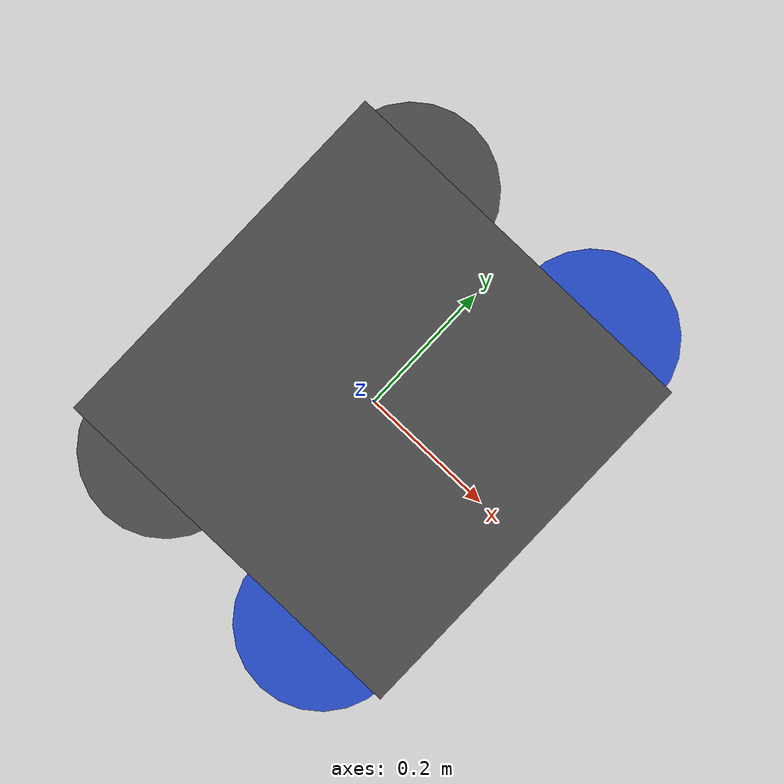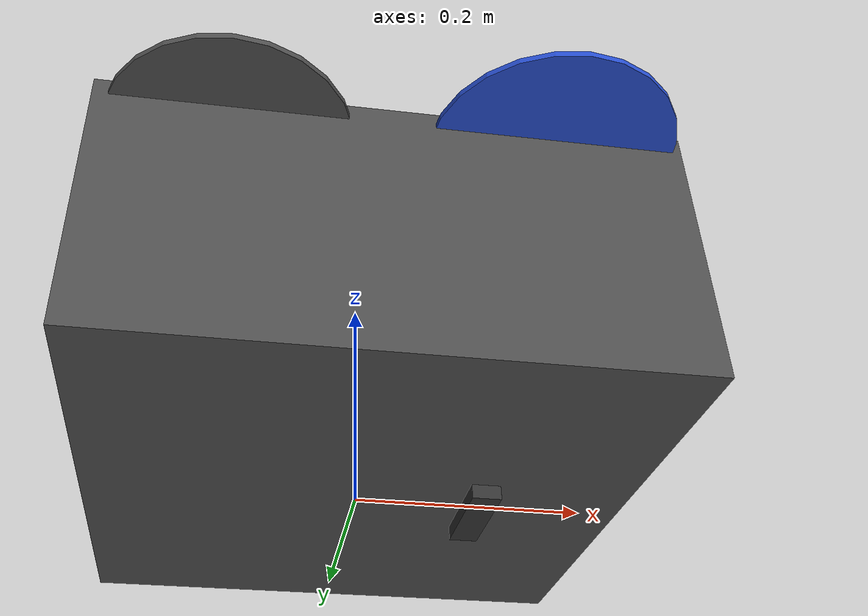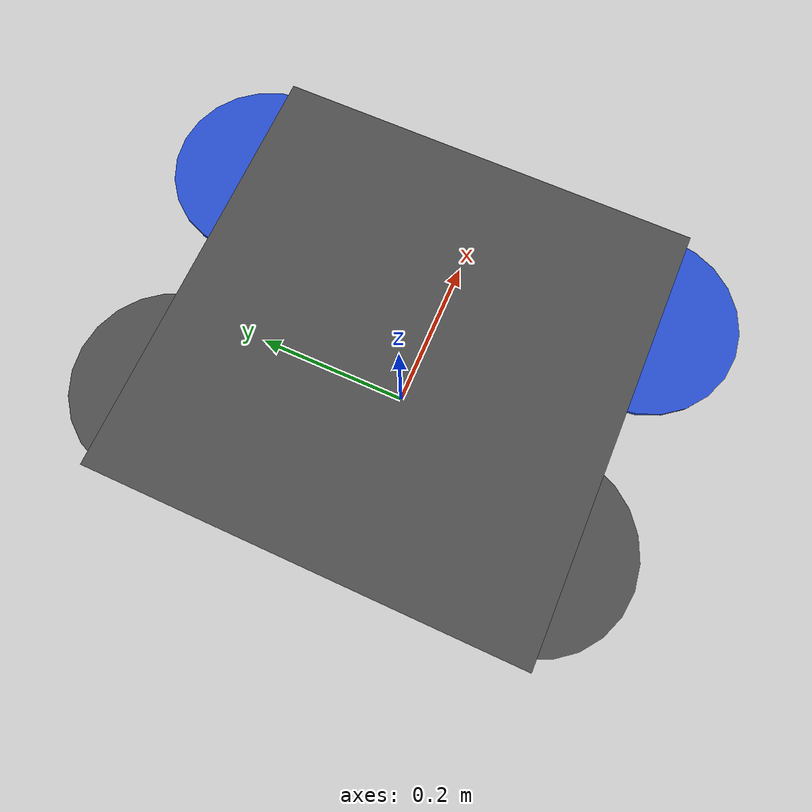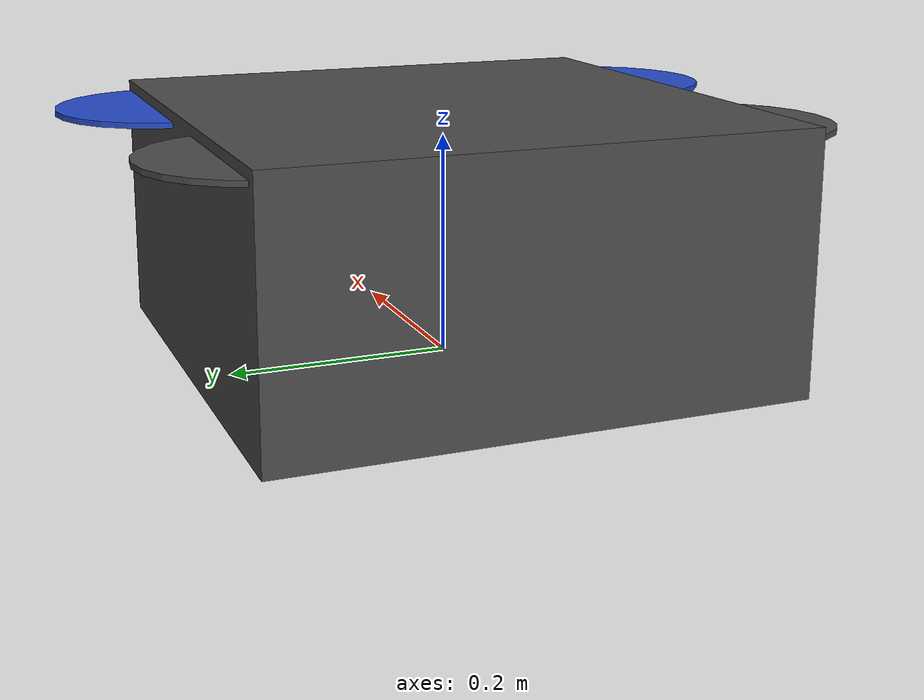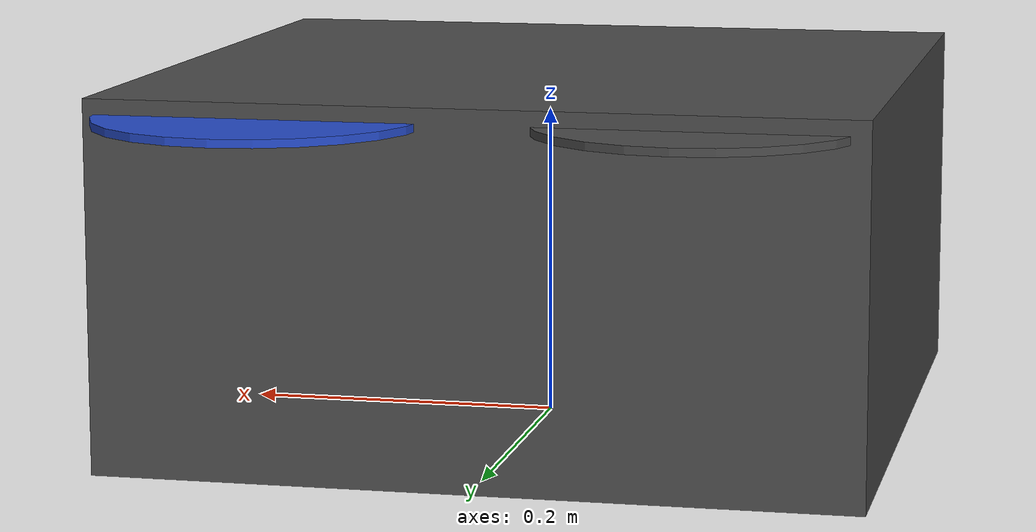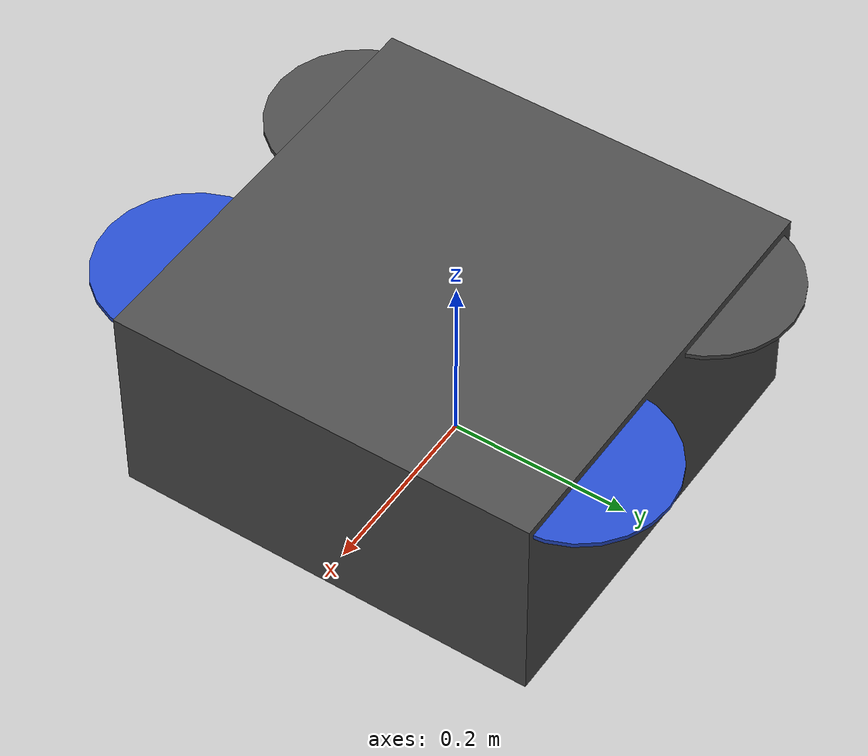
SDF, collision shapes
<?xml version='1.0'?>
<sdf version="1.9">
  <model name="iris_with_d435i">
    <include>
      <uri>model://iris_with_standoffs</uri>
    </include>

    <include>
      <uri>model://realsense_d435i</uri>
      <name>d435i</name>
      <pose>0.116 0.0175 0 0 0 0</pose>
    </include>

    <joint name="camera_joint" type="fixed">
      <parent>iris_with_standoffs::base_link</parent>
      <child>d435i::camera_link</child>
    </joint>

    <!-- plugins -->
    <plugin filename="gz-sim-joint-state-publisher-system"
      name="gz::sim::systems::JointStatePublisher">
    </plugin>
    <plugin filename="gz-sim-lift-drag-system"
        name="gz::sim::systems::LiftDrag">
      <a0>0.3</a0>
      <alpha_stall>1.4</alpha_stall>
      <cla>4.2500</cla>
      <cda>0.10</cda>
      <cma>0.0</cma>
      <cla_stall>-0.025</cla_stall>
      <cda_stall>0.0</cda_stall>
      <cma_stall>0.0</cma_stall>
      <area>0.002</area>
      <air_density>1.2041</air_density>
      <cp>0.084 0 0</cp>
      <forward>0 1 0</forward>
      <upward>0 0 1</upward>
      <link_name>iris_with_standoffs::rotor_0</link_name>
    </plugin>
    <plugin filename="gz-sim-lift-drag-system"
        name="gz::sim::systems::LiftDrag">
      <a0>0.3</a0>
      <alpha_stall>1.4</alpha_stall>
      <cla>4.2500</cla>
      <cda>0.10</cda>
      <cma>0.0</cma>
      <cla_stall>-0.025</cla_stall>
      <cda_stall>0.0</cda_stall>
      <cma_stall>0.0</cma_stall>
      <area>0.002</area>
      <air_density>1.2041</air_density>
      <cp>-0.084 0 0</cp>
      <forward>0 -1 0</forward>
      <upward>0 0 1</upward>
      <link_name>iris_with_standoffs::rotor_0</link_name>
    </plugin>

    <plugin filename="gz-sim-lift-drag-system"
        name="gz::sim::systems::LiftDrag">
      <a0>0.3</a0>
      <alpha_stall>1.4</alpha_stall>
      <cla>4.2500</cla>
      <cda>0.10</cda>
      <cma>0.0</cma>
      <cla_stall>-0.025</cla_stall>
      <cda_stall>0.0</cda_stall>
      <cma_stall>0.0</cma_stall>
      <area>0.002</area>
      <air_density>1.2041</air_density>
      <cp>0.084 0 0</cp>
      <forward>0 1 0</forward>
      <upward>0 0 1</upward>
      <link_name>iris_with_standoffs::rotor_1</link_name>
    </plugin>
    <plugin filename="gz-sim-lift-drag-system"
        name="gz::sim::systems::LiftDrag">
      <a0>0.3</a0>
      <alpha_stall>1.4</alpha_stall>
      <cla>4.2500</cla>
      <cda>0.10</cda>
      <cma>0.0</cma>
      <cla_stall>-0.025</cla_stall>
      <cda_stall>0.0</cda_stall>
      <cma_stall>0.0</cma_stall>
      <area>0.002</area>
      <air_density>1.2041</air_density>
      <cp>-0.084 0 0</cp>
      <forward>0 -1 0</forward>
      <upward>0 0 1</upward>
      <link_name>iris_with_standoffs::rotor_1</link_name>
    </plugin>

    <plugin filename="gz-sim-lift-drag-system"
        name="gz::sim::systems::LiftDrag">
      <a0>0.3</a0>
      <alpha_stall>1.4</alpha_stall>
      <cla>4.2500</cla>
      <cda>0.10</cda>
      <cma>0.0</cma>
      <cla_stall>-0.025</cla_stall>
      <cda_stall>0.0</cda_stall>
      <cma_stall>0.0</cma_stall>
      <area>0.002</area>
      <air_density>1.2041</air_density>
      <cp>0.084 0 0</cp>
      <forward>0 -1 0</forward>
      <upward>0 0 1</upward>
      <link_name>iris_with_standoffs::rotor_2</link_name>
    </plugin>
    <plugin filename="gz-sim-lift-drag-system"
        name="gz::sim::systems::LiftDrag">
      <a0>0.3</a0>
      <alpha_stall>1.4</alpha_stall>
      <cla>4.2500</cla>
      <cda>0.10</cda>
      <cma>0.0</cma>
      <cla_stall>-0.025</cla_stall>
      <cda_stall>0.0</cda_stall>
      <cma_stall>0.0</cma_stall>
      <area>0.002</area>
      <air_density>1.2041</air_density>
      <cp>-0.084 0 0</cp>
      <forward>0 1 0</forward>
      <upward>0 0 1</upward>
      <link_name>iris_with_standoffs::rotor_2</link_name>
    </plugin>

    <plugin filename="gz-sim-lift-drag-system"
        name="gz::sim::systems::LiftDrag">
      <a0>0.3</a0>
      <alpha_stall>1.4</alpha_stall>
      <cla>4.2500</cla>
      <cda>0.10</cda>
      <cma>0.0</cma>
      <cla_stall>-0.025</cla_stall>
      <cda_stall>0.0</cda_stall>
      <cma_stall>0.0</cma_stall>
      <area>0.002</area>
      <air_density>1.2041</air_density>
      <cp>0.084 0 0</cp>
      <forward>0 -1 0</forward>
      <upward>0 0 1</upward>
      <link_name>iris_with_standoffs::rotor_3</link_name>
    </plugin>
    <plugin filename="gz-sim-lift-drag-system"
        name="gz::sim::systems::LiftDrag">
      <a0>0.3</a0>
      <alpha_stall>1.4</alpha_stall>
      <cla>4.2500</cla>
      <cda>0.10</cda>
      <cma>0.0</cma>
      <cla_stall>-0.025</cla_stall>
      <cda_stall>0.0</cda_stall>
      <cma_stall>0.0</cma_stall>
      <area>0.002</area>
      <air_density>1.2041</air_density>
      <cp>-0.084 0 0</cp>
      <forward>0 1 0</forward>
      <upward>0 0 1</upward>
      <link_name>iris_with_standoffs::rotor_3</link_name>
    </plugin>

    <plugin filename="gz-sim-apply-joint-force-system"
      name="gz::sim::systems::ApplyJointForce">
      <joint_name>iris_with_standoffs::rotor_0_joint</joint_name>
    </plugin>
    <plugin filename="gz-sim-apply-joint-force-system"
      name="gz::sim::systems::ApplyJointForce">
      <joint_name>iris_with_standoffs::rotor_1_joint</joint_name>
    </plugin>
    <plugin filename="gz-sim-apply-joint-force-system"
      name="gz::sim::systems::ApplyJointForce">
      <joint_name>iris_with_standoffs::rotor_2_joint</joint_name>
    </plugin>
    <plugin filename="gz-sim-apply-joint-force-system"
      name="gz::sim::systems::ApplyJointForce">
      <joint_name>iris_with_standoffs::rotor_3_joint</joint_name>
    </plugin>

    <plugin name="ArduPilotPlugin"
      filename="ArduPilotPlugin">
      <!-- Port settings -->
      <fdm_addr>127.0.0.1</fdm_addr>
      <fdm_port_in>9002</fdm_port_in>
      <connectionTimeoutMaxCount>5</connectionTimeoutMaxCount>
      <lock_step>1</lock_step>
      <no_time_sync>1</no_time_sync>

      <!-- Frame conventions
        Require by ArduPilot: change model and gazebo from XYZ to XY-Z coordinates
      -->
      <modelXYZToAirplaneXForwardZDown degrees="true">0 0 0 180 0 0</modelXYZToAirplaneXForwardZDown>
      <gazeboXYZToNED degrees="true">0 0 0 180 0 90</gazeboXYZToNED>

      <!-- Sensors -->
      <imuName>iris_with_standoffs::imu_link::imu_sensor</imuName>

      <!--
          incoming control command [0, 1]
          so offset it by 0 to get [0, 1]
          and divide max target by 1.
          offset = 0
          multiplier = 838 max rpm / 1 = 838
        -->
      <control channel="0">
        <jointName>iris_with_standoffs::rotor_0_joint</jointName>
        <useForce>1</useForce>
        <multiplier>838</multiplier>
        <offset>0</offset>
        <servo_min>1100</servo_min>
        <servo_max>1900</servo_max>
        <type>VELOCITY</type>
        <p_gain>0.20</p_gain>
        <i_gain>0</i_gain>
        <d_gain>0</d_gain>
        <i_max>0</i_max>
        <i_min>0</i_min>
        <cmd_max>2.5</cmd_max>
        <cmd_min>-2.5</cmd_min>
        <controlVelocitySlowdownSim>1</controlVelocitySlowdownSim>
      </control>

      <control channel="1">
        <jointName>iris_with_standoffs::rotor_1_joint</jointName>
        <useForce>1</useForce>
        <multiplier>838</multiplier>
        <offset>0</offset>
        <servo_min>1100</servo_min>
        <servo_max>1900</servo_max>
        <type>VELOCITY</type>
        <p_gain>0.20</p_gain>
        <i_gain>0</i_gain>
        <d_gain>0</d_gain>
        <i_max>0</i_max>
        <i_min>0</i_min>
        <cmd_max>2.5</cmd_max>
        <cmd_min>-2.5</cmd_min>
        <controlVelocitySlowdownSim>1</controlVelocitySlowdownSim>
      </control>

      <control channel="2">
        <jointName>iris_with_standoffs::rotor_2_joint</jointName>
        <useForce>1</useForce>
        <multiplier>-838</multiplier>
        <offset>0</offset>
        <servo_min>1100</servo_min>
        <servo_max>1900</servo_max>
        <type>VELOCITY</type>
        <p_gain>0.20</p_gain>
        <i_gain>0</i_gain>
        <d_gain>0</d_gain>
        <i_max>0</i_max>
        <i_min>0</i_min>
        <cmd_max>2.5</cmd_max>
        <cmd_min>-2.5</cmd_min>
        <controlVelocitySlowdownSim>1</controlVelocitySlowdownSim>
      </control>

      <control channel="3">
        <jointName>iris_with_standoffs::rotor_3_joint</jointName>
        <useForce>1</useForce>
        <multiplier>-838</multiplier>
        <offset>0</offset>
        <servo_min>1100</servo_min>
        <servo_max>1900</servo_max>
        <type>VELOCITY</type>
        <p_gain>0.20</p_gain>
        <i_gain>0</i_gain>
        <d_gain>0</d_gain>
        <i_max>0</i_max>
        <i_min>0</i_min>
        <cmd_max>2.5</cmd_max>
        <cmd_min>-2.5</cmd_min>
        <controlVelocitySlowdownSim>1</controlVelocitySlowdownSim>
      </control>

    </plugin>

  </model>
</sdf>

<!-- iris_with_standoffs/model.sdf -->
<sdf version='1.6'>
  <model name='iris'>
    <pose>0 0 0.194923 0 0 0</pose>
    <link name='base_link'>
      <velocity_decay>
        <linear>0.0</linear>
        <angular>0.0</angular>
      </velocity_decay>
      <inertial>
        <pose>0 0 0 0 0 0</pose>
        <mass>1.5</mass>
        <inertia>
          <ixx>0.008</ixx>
          <ixy>0</ixy>
          <ixz>0</ixz>
          <iyy>0.015</iyy>
          <iyz>0</iyz>
          <izz>0.017</izz>
        </inertia>
      </inertial>
      <collision name='base_link_collision'>
        <pose>0 0 -0.08 0 0 0</pose>
        <geometry>
          <box>
            <size>0.47 0.47 0.23</size>
          </box>
        </geometry>
        <surface>
          <contact>
            <ode>
              <max_vel>100.0</max_vel>
              <min_depth>0.001</min_depth>
            </ode>
          </contact>
          <friction>
            <ode>
              <mu>1.0</mu>
              <mu2>1.0</mu2>
            </ode>
          </friction>
        </surface>
      </collision>
      <visual name='base_link_visual'>
        <geometry>
          <mesh>
            <uri>model://../model_source/models/iris_with_standoffs/meshes/iris.dae</uri>
          </mesh>
        </geometry>
        <material>
          <script>
            <name>Gazebo/DarkGrey</name>
          </script>
        </material>
      </visual>

      <visual name='front_left_leg_visual'>
        <pose>0.123 0.22 -0.11 0 0 0</pose>
        <geometry>
          <cylinder>
            <radius>0.005</radius>
            <length>0.17</length>
          </cylinder>
        </geometry>
        <material>
          <script>
            <name>Gazebo/FlatBlack</name>
            <uri>file://media/materials/scripts/gazebo.material</uri>
          </script>
        </material>
      </visual>
      <visual name='front_right_leg_visual'>
        <pose>0.123 -0.22 -0.11 0 0 0</pose>
        <geometry>
          <cylinder>
            <radius>0.005</radius>
            <length>0.17</length>
          </cylinder>
        </geometry>
        <material>
          <script>
            <name>Gazebo/FlatBlack</name>
            <uri>file://media/materials/scripts/gazebo.material</uri>
          </script>
        </material>
      </visual>
      <visual name='rear_left_leg_visual'>
        <pose>-0.140 0.21 -0.11 0 0 0</pose>
        <geometry>
          <cylinder>
            <radius>0.005</radius>
            <length>0.17</length>
          </cylinder>
        </geometry>
        <material>
          <script>
            <name>Gazebo/FlatBlack</name>
            <uri>file://media/materials/scripts/gazebo.material</uri>
          </script>
        </material>
      </visual>
      <visual name='rear_right_leg_visual'>
        <pose>-0.140 -0.21 -0.11 0 0 0</pose>
        <geometry>
          <cylinder>
            <radius>0.005</radius>
            <length>0.17</length>
          </cylinder>
        </geometry>
        <material>
          <script>
            <name>Gazebo/FlatBlack</name>
            <uri>file://media/materials/scripts/gazebo.material</uri>
          </script>
        </material>
      </visual>
    </link>
    <link name='iris/ground_truth/odometry_sensorgt_link'>
      <pose>0 0 0 0 -0 0</pose>
      <inertial>
        <pose>0 0 0 0 -0 0</pose>
        <mass>0.15</mass>
        <inertia>
          <ixx>0.0001</ixx>
          <ixy>0</ixy>
          <ixz>0</ixz>
          <iyy>0.0002</iyy>
          <iyz>0</iyz>
          <izz>0.0002</izz>
        </inertia>
      </inertial>
    </link>
    <joint name='iris/ground_truth/odometry_sensorgt_joint' type='revolute'>
      <child>iris/ground_truth/odometry_sensorgt_link</child>
      <parent>base_link</parent>
      <axis>
        <xyz>0 0 1</xyz>
        <limit>
          <lower>0</lower>
          <upper>0</upper>
          <effort>0</effort>
          <velocity>0</velocity>
        </limit>
        <dynamics>
          <damping>1.0</damping>
        </dynamics>
        <use_parent_model_frame>1</use_parent_model_frame>
      </axis>
      <physics>
        <ode>
          <implicit_spring_damper>1</implicit_spring_damper>
        </ode>
      </physics>
    </joint>
    <link name='iris/imu_link'>
      <inertial>
        <pose>0 0 0 0 0 0</pose>
        <mass>0.15</mass>
        <inertia>
          <ixx>0.00001</ixx>
          <ixy>0</ixy>
          <ixz>0</ixz>
          <iyy>0.00002</iyy>
          <iyz>0</iyz>
          <izz>0.00002</izz>
        </inertia>
      </inertial>
      <sensor name="imu_sensor" type="imu">
        <pose>0 0 0 3.141593 0 0</pose>
        <always_on>1</always_on>
        <update_rate>1000.0</update_rate>
      </sensor>
    </link>
    <joint name='iris/imu_joint' type='revolute'>
      <child>iris/imu_link</child>
      <parent>base_link</parent>
      <axis>
        <xyz>0 0 1</xyz>
        <limit>
          <lower>0</lower>
          <upper>0</upper>
          <effort>0</effort>
          <velocity>0</velocity>
        </limit>
        <dynamics>
          <damping>1.0</damping>
        </dynamics>
        <use_parent_model_frame>1</use_parent_model_frame>
      </axis>
      <physics>
        <ode>
          <implicit_spring_damper>1</implicit_spring_damper>
        </ode>
      </physics>
    </joint>
    <link name='rotor_0'>
      <pose>0.13 -0.22 0.023 0 -0 0</pose>
      <inertial>
        <pose>0 0 0 0 -0 0</pose>
        <mass>0.025</mass>
        <inertia>
          <ixx>9.75e-06</ixx>
          <ixy>0</ixy>
          <ixz>0</ixz>
          <iyy>0.000166704</iyy>
          <iyz>0</iyz>
          <izz>0.000167604</izz>
        </inertia>
      </inertial>
      <collision name='rotor_0_collision'>
        <pose>0 0 0 0 -0 0</pose>
        <geometry>
          <cylinder>
            <length>0.005</length>
            <radius>0.1</radius>
          </cylinder>
        </geometry>
        <surface>
          <contact>
            <ode/>
          </contact>
          <friction>
            <ode/>
          </friction>
        </surface>
      </collision>
      <visual name='rotor_0_visual'>
        <pose>0 0 0 0 -0 0</pose>
        <geometry>
          <mesh>
            <scale>1 1 1</scale>
            <uri>model://../model_source/models/iris_with_standoffs/meshes/iris_prop_ccw.dae</uri>
          </mesh>
        </geometry>
        <material>
          <script>
            <name>Gazebo/Blue</name>
            <uri>__default__</uri>
          </script>
        </material>
      </visual>
      <gravity>1</gravity>
      <velocity_decay/>
      <self_collide>0</self_collide>
    </link>
    <joint name='rotor_0_joint' type='revolute'>
      <child>rotor_0</child>
      <parent>base_link</parent>
      <axis>
        <xyz>0 0 1</xyz>
        <limit>
          <lower>-1e+16</lower>
          <upper>1e+16</upper>
        </limit>
        <dynamics>
          <damping>0.004</damping>
        </dynamics>
        <use_parent_model_frame>1</use_parent_model_frame>
      </axis>
      <physics>
        <ode>
          <implicit_spring_damper>1</implicit_spring_damper>
        </ode>
      </physics>
    </joint>
    <link name='rotor_1'>
      <pose>-0.13 0.2 0.023 0 -0 0</pose>
      <inertial>
        <pose>0 0 0 0 -0 0</pose>
        <mass>0.025</mass>
        <inertia>
          <ixx>9.75e-06</ixx>
          <ixy>0</ixy>
          <ixz>0</ixz>
          <iyy>0.000166704</iyy>
          <iyz>0</iyz>
          <izz>0.000167604</izz>
        </inertia>
      </inertial>
      <collision name='rotor_1_collision'>
        <pose>0 0 0 0 -0 0</pose>
        <geometry>
          <cylinder>
            <length>0.005</length>
            <radius>0.1</radius>
          </cylinder>
        </geometry>
        <surface>
          <contact>
            <ode/>
          </contact>
          <friction>
            <ode/>
          </friction>
        </surface>
      </collision>
      <visual name='rotor_1_visual'>
        <pose>0 0 0 0 -0 0</pose>
        <geometry>
          <mesh>
            <scale>1 1 1</scale>
            <uri>model://../model_source/models/iris_with_standoffs/meshes/iris_prop_ccw.dae</uri>
          </mesh>
        </geometry>
        <material>
          <script>
            <name>Gazebo/DarkGrey</name>
            <uri>__default__</uri>
          </script>
        </material>
      </visual>
      <gravity>1</gravity>
      <velocity_decay/>
      <self_collide>0</self_collide>
    </link>
    <joint name='rotor_1_joint' type='revolute'>
      <child>rotor_1</child>
      <parent>base_link</parent>
      <axis>
        <xyz>0 0 1</xyz>
        <limit>
          <lower>-1e+16</lower>
          <upper>1e+16</upper>
        </limit>
        <dynamics>
          <damping>0.004</damping>
        </dynamics>
        <use_parent_model_frame>1</use_parent_model_frame>
      </axis>
      <physics>
        <ode>
          <implicit_spring_damper>1</implicit_spring_damper>
        </ode>
      </physics>
    </joint>
    <link name='rotor_2'>
      <pose>0.13 0.22 0.023 0 -0 0</pose>
      <inertial>
        <pose>0 0 0 0 -0 0</pose>
        <mass>0.025</mass>
        <inertia>
          <ixx>9.75e-06</ixx>
          <ixy>0</ixy>
          <ixz>0</ixz>
          <iyy>0.000166704</iyy>
          <iyz>0</iyz>
          <izz>0.000167604</izz>
        </inertia>
      </inertial>
      <collision name='rotor_2_collision'>
        <pose>0 0 0 0 -0 0</pose>
        <geometry>
          <cylinder>
            <length>0.005</length>
            <radius>0.1</radius>
          </cylinder>
        </geometry>
        <surface>
          <contact>
            <ode/>
          </contact>
          <friction>
            <ode/>
          </friction>
        </surface>
      </collision>
      <visual name='rotor_2_visual'>
        <pose>0 0 0 0 -0 0</pose>
        <geometry>
          <mesh>
            <scale>1 1 1</scale>
            <uri>model://../model_source/models/iris_with_standoffs/meshes/iris_prop_cw.dae</uri>
          </mesh>
        </geometry>
        <material>
          <script>
            <name>Gazebo/Blue</name>
            <uri>__default__</uri>
          </script>
        </material>
      </visual>
      <gravity>1</gravity>
      <velocity_decay/>
      <self_collide>0</self_collide>
    </link>
    <joint name='rotor_2_joint' type='revolute'>
      <child>rotor_2</child>
      <parent>base_link</parent>
      <axis>
        <xyz>0 0 1</xyz>
        <limit>
          <lower>-1e+16</lower>
          <upper>1e+16</upper>
        </limit>
        <dynamics>
          <damping>0.004</damping>
        </dynamics>
        <use_parent_model_frame>1</use_parent_model_frame>
      </axis>
      <physics>
        <ode>
          <implicit_spring_damper>1</implicit_spring_damper>
        </ode>
      </physics>
    </joint>
    <link name='rotor_3'>
      <pose>-0.13 -0.2 0.023 0 -0 0</pose>
      <inertial>
        <pose>0 0 0 0 -0 0</pose>
        <mass>0.025</mass>
        <inertia>
          <ixx>9.75e-06</ixx>
          <ixy>0</ixy>
          <ixz>0</ixz>
          <iyy>0.000166704</iyy>
          <iyz>0</iyz>
          <izz>0.000167604</izz>
        </inertia>
      </inertial>
      <collision name='rotor_3_collision'>
        <pose>0 0 0 0 -0 0</pose>
        <geometry>
          <cylinder>
            <length>0.005</length>
            <radius>0.1</radius>
          </cylinder>
        </geometry>
        <surface>
          <contact>
            <ode/>
          </contact>
          <friction>
            <ode/>
          </friction>
        </surface>
      </collision>
      <visual name='rotor_3_visual'>
        <pose>0 0 0 0 -0 0</pose>
        <geometry>
          <mesh>
            <scale>1 1 1</scale>
            <uri>model://../model_source/models/iris_with_standoffs/meshes/iris_prop_cw.dae</uri>
          </mesh>
        </geometry>
        <material>
          <script>
            <name>Gazebo/DarkGrey</name>
            <uri>__default__</uri>
          </script>
        </material>
      </visual>
      <gravity>1</gravity>
      <velocity_decay/>
      <self_collide>0</self_collide>
    </link>
    <joint name='rotor_3_joint' type='revolute'>
      <child>rotor_3</child>
      <parent>base_link</parent>
      <axis>
        <xyz>0 0 1</xyz>
        <limit>
          <lower>-1e+16</lower>
          <upper>1e+16</upper>
        </limit>
        <dynamics>
          <damping>0.004</damping>
        </dynamics>
        <use_parent_model_frame>1</use_parent_model_frame>
      </axis>
      <physics>
        <ode>
          <implicit_spring_damper>1</implicit_spring_damper>
        </ode>
      </physics>
    </joint>
    <static>0</static>
  </model>
</sdf>

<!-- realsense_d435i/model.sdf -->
<sdf version="1.9">
  <model name="realsense_d435i">
    <frame name="d435i_depth_frame" attached_to="camera_link">
      <pose relative_to="camera_link">0 0 0 0 0 0</pose>
    </frame>
    <frame name="d435i_depth_optical_frame" attached_to="d435i_depth_frame">
      <pose relative_to="d435i_depth_frame">0 0 0 -1.5707963 0 -1.5707963</pose>
    </frame>

    <frame name="d435i_color_frame" attached_to="camera_link">
      <pose relative_to="camera_link">0 0.015 0 0 0 0</pose>
    </frame>
    <frame name="d435i_color_optical_frame" attached_to="d435i_color_frame">
      <pose relative_to="d435i_color_frame">0 0 0 -1.5707963 0 -1.5707963</pose>
    </frame>

    <frame name="d435i_infra1_frame" attached_to="camera_link">
      <pose relative_to="camera_link">0 0 0 0 0 0</pose>
    </frame>
    <frame name="d435i_infra1_optical_frame" attached_to="d435i_infra1_frame">
      <pose relative_to="d435i_infra1_frame">0 0 0 -1.5707963 0 -1.5707963</pose>
    </frame>
    <frame name="d435i_infra2_frame" attached_to="camera_link">
      <pose relative_to="camera_link">0 -0.050 0 0 0 0</pose>
    </frame>
    <frame name="d435i_infra2_optical_frame" attached_to="d435i_infra2_frame">
      <pose relative_to="d435i_infra2_frame">0 0 0 -1.5707963 0 -1.5707963</pose>
    </frame>

    <frame name="d435i_imu_frame" attached_to="camera_link">
      <pose relative_to="camera_link">-0.01174 -0.00552 0.0051 0 0 0</pose>
    </frame>
    <frame name="d435i_imu_optical_frame" attached_to="d435i_imu_frame">
      <pose relative_to="d435i_imu_frame">0 0 0 -1.5707963 0 -1.5707963</pose>
    </frame>

    <link name="camera_link">
      <inertial>
        <!-- Module is 25.05 x 90 x 25 mm, 72 g. Centre of the box sits back and
             right of the left IR imager, hence the offset pose. -->
        <pose>-0.0106 -0.0175 0 0 0 0</pose>
        <mass>0.072</mass>
        <inertia>
          <ixx>5.235e-05</ixx>
          <ixy>0</ixy>
          <ixz>0</ixz>
          <iyy>7.513e-06</iyy>
          <iyz>0</iyz>
          <izz>5.236e-05</izz>
        </inertia>
      </inertial>

      <visual name="body_visual">
        <pose>-0.0106 -0.0175 0 0 0 0</pose>
        <geometry>
          <box>
            <size>0.02505 0.090 0.025</size>
          </box>
        </geometry>
        <material>
          <ambient>0.15 0.15 0.15 1</ambient>
          <diffuse>0.2 0.2 0.2 1</diffuse>
          <specular>0.4 0.4 0.4 1</specular>
        </material>
      </visual>

      <collision name="body_collision">
        <pose>-0.0106 -0.0175 0 0 0 0</pose>
        <geometry>
          <box>
            <size>0.02505 0.090 0.025</size>
          </box>
        </geometry>
      </collision>

      <sensor name="depth" type="depth_camera">
        <gz_frame_id>d435i_depth_optical_frame</gz_frame_id>
        <pose>0 0 0 0 0 0</pose>
        <topic>/d435i/depth/image_rect_raw</topic>
        <always_on>1</always_on>
        <update_rate>30</update_rate>
        <camera>
          <horizontal_fov>1.518436</horizontal_fov>
          <image>
            <width>848</width>
            <height>480</height>
            <format>R_FLOAT32</format>
          </image>
          <clip>
            <!-- near = min-Z at 848x480 (~0.195 m); far = datasheet max range. -->
            <near>0.2</near>
            <far>10.0</far>
          </clip>
          <noise>
            <type>gaussian</type>
            <mean>0</mean>
            <stddev>0.014</stddev>
          </noise>
        </camera>
      </sensor>

      <sensor name="infra1" type="camera">
        <gz_frame_id>d435i_infra1_optical_frame</gz_frame_id>
        <pose>0 0 0 0 0 0</pose>
        <topic>/d435i/infra1/image_rect_raw</topic>
        <always_on>1</always_on>
        <update_rate>30</update_rate>
        <camera>
          <horizontal_fov>1.518436</horizontal_fov>
          <image>
            <width>848</width>
            <height>480</height>
            <format>L8</format>
          </image>
          <clip>
            <near>0.1</near>
            <far>1000.0</far>
          </clip>
          <noise>
            <type>gaussian</type>
            <mean>0</mean>
            <stddev>0.007</stddev>
          </noise>
        </camera>
      </sensor>

      <sensor name="infra2" type="camera">
        <gz_frame_id>d435i_infra2_optical_frame</gz_frame_id>
        <pose>0 -0.050 0 0 0 0</pose>
        <topic>/d435i/infra2/image_rect_raw</topic>
        <always_on>1</always_on>
        <update_rate>30</update_rate>
        <camera>
          <horizontal_fov>1.518436</horizontal_fov>
          <image>
            <width>848</width>
            <height>480</height>
            <format>L8</format>
          </image>
          <clip>
            <near>0.1</near>
            <far>1000.0</far>
          </clip>
          <noise>
            <type>gaussian</type>
            <mean>0</mean>
            <stddev>0.007</stddev>
          </noise>
        </camera>
      </sensor>

      <!--
        COLOR. 69 x 42 deg per datasheet; at 848x480 the derived vfov is 42.5 deg.
        Offset +15 mm in Y from depth - see the header comment.
      -->
      <sensor name="color" type="camera">
        <gz_frame_id>d435i_color_optical_frame</gz_frame_id>
        <pose>0 0.015 0 0 0 0</pose>
        <topic>/d435i/color/image_raw</topic>
        <always_on>1</always_on>
        <update_rate>30</update_rate>
        <camera>
          <horizontal_fov>1.204277</horizontal_fov>
          <image>
            <width>848</width>
            <height>480</height>
            <format>R8G8B8</format>
          </image>
          <clip>
            <near>0.1</near>
            <far>1000.0</far>
          </clip>
          <noise>
            <type>gaussian</type>
            <mean>0</mean>
            <stddev>0.007</stddev>
          </noise>
        </camera>

        <plugin name="GstCameraPlugin" filename="GstCameraPlugin">
          <udp_host>127.0.0.1</udp_host>
          <udp_port>5600</udp_port>
          <use_basic_pipeline>true</use_basic_pipeline>
          <use_cuda>false</use_cuda>
        </plugin>
      </sensor>

      <sensor name="imu" type="imu">
        <gz_frame_id>d435i_imu_optical_frame</gz_frame_id>
        <pose>-0.01174 -0.00552 0.0051 -1.5707963 0 -1.5707963</pose>
        <topic>/d435i/imu</topic>
        <always_on>1</always_on>
        <update_rate>200</update_rate>
        <imu>
          <angular_velocity>
            <x><noise type="gaussian"><mean>0</mean><stddev>2.44e-3</stddev><bias_mean>0</bias_mean><bias_stddev>1.745e-2</bias_stddev></noise></x>
            <y><noise type="gaussian"><mean>0</mean><stddev>2.44e-3</stddev><bias_mean>0</bias_mean><bias_stddev>1.745e-2</bias_stddev></noise></y>
            <z><noise type="gaussian"><mean>0</mean><stddev>2.44e-3</stddev><bias_mean>0</bias_mean><bias_stddev>1.745e-2</bias_stddev></noise></z>
          </angular_velocity>
          <linear_acceleration>
            <x><noise type="gaussian"><mean>0</mean><stddev>1.47e-2</stddev><bias_mean>0</bias_mean><bias_stddev>6.865e-1</bias_stddev></noise></x>
            <y><noise type="gaussian"><mean>0</mean><stddev>1.47e-2</stddev><bias_mean>0</bias_mean><bias_stddev>6.865e-1</bias_stddev></noise></y>
            <z><noise type="gaussian"><mean>0</mean><stddev>1.47e-2</stddev><bias_mean>0</bias_mean><bias_stddev>6.865e-1</bias_stddev></noise></z>
          </linear_acceleration>
        </imu>
      </sensor>
    </link>
  </model>
</sdf>
